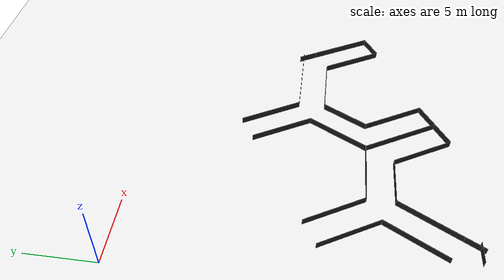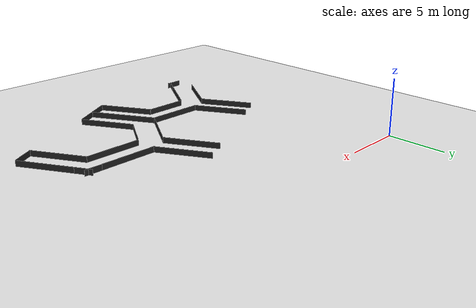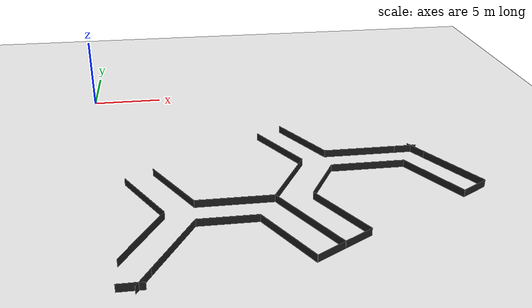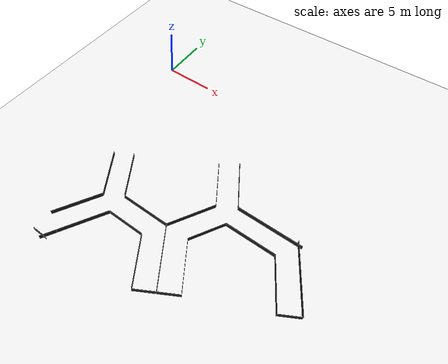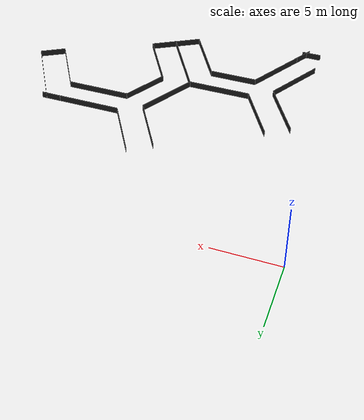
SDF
<sdf version="1.6">
 <world name="default">
  <model name="ground_plane">
   <static>1</static>
   <link name="link">
    <collision name="collision">
     <geometry><plane><normal>0 0 1</normal><size>100 100</size></plane></geometry>
     <surface><friction><ode><mu>100</mu><mu2>50</mu2></ode></friction></surface>
    </collision>
    <visual name="visual">
     <cast_shadows>0</cast_shadows>
     <geometry><plane><normal>0 0 1</normal><size>100 100</size></plane></geometry>
     <material>
      <script><uri>file://media/materials/scripts/gazebo.material</uri><name>Gazebo/White</name></script>
     </material>
    </visual>
   </link>
  </model>
  <model name="T_camber_2_2">
   <link name="link_clone">
    <inertial>
     <mass>1</mass>
     <inertia>
      <ixx>0.166667</ixx>
      <ixy>0</ixy>
      <ixz>0</ixz>
      <iyy>0.166667</iyy>
      <iyz>0</iyz>
      <izz>0.166667</izz>
     </inertia>
    </inertial>
    <pose>12.7749 3.79089 0 5e-06 -0 2.0944</pose>
    <visual name="visual_2">
     <geometry><box><size>0.015 4.8453 0.5</size></box></geometry>
     <material>
      <script><name>Gazebo/FlatBlack</name><uri>file://media/materials/scripts/gazebo.material</uri></script>
      <shader type="pixel"><normal_map>__default__</normal_map></shader>
      <ambient>0.1 0.1 0.1 1</ambient>
      <diffuse>0.1 0.1 0.1 1</diffuse>
      <specular>0.01 0.01 0.01 1</specular>
      <emissive>0 0 0 1</emissive>
     </material>
     <pose>2 0 0 0 -0 0</pose>
    </visual>
    <visual name="visual">
     <geometry><box><size>0.015 4.8453 0.5</size></box></geometry>
     <material>
      <script><name>Gazebo/FlatBlack</name><uri>file://media/materials/scripts/gazebo.material</uri></script>
      <shader type="pixel"><normal_map>__default__</normal_map></shader>
      <ambient>0.1 0.1 0.1 1</ambient>
      <diffuse>0.1 0.1 0.1 1</diffuse>
      <specular>0.01 0.01 0.01 1</specular>
      <emissive>0 0 0 1</emissive>
     </material>
    </visual>
    <collision name="collision_1">
     <pose>2 0 0 0 -0 0</pose>
     <geometry><box><size>0.015 4.8453 0.5</size></box></geometry>
     <surface>
      <friction>
       <ode><mu>1</mu><mu2>1</mu2><fdir1>0 0 0</fdir1><slip1>0</slip1><slip2>0</slip2></ode>
       <torsional>
        <coefficient>1</coefficient>
        <patch_radius>0</patch_radius>
        <surface_radius>0</surface_radius>
        <use_patch_radius>1</use_patch_radius>
        <ode><slip>0</slip></ode>
       </torsional>
      </friction>
      <bounce><restitution_coefficient>0</restitution_coefficient><threshold>1e+06</threshold></bounce>
      <contact>
       <collide_without_contact>0</collide_without_contact>
       <collide_without_contact_bitmask>1</collide_without_contact_bitmask>
       <collide_bitmask>1</collide_bitmask>
       <ode>
        <soft_cfm>0</soft_cfm>
        <soft_erp>0.2</soft_erp>
        <kp>1e+13</kp>
        <kd>1</kd>
        <max_vel>0.01</max_vel>
        <min_depth>0</min_depth>
       </ode>
       <bullet>
        <split_impulse>1</split_impulse>
        <split_impulse_penetration_threshold>-0.01</split_impulse_penetration_threshold>
        <soft_cfm>0</soft_cfm>
        <soft_erp>0.2</soft_erp>
        <kp>1e+13</kp>
        <kd>1</kd>
       </bullet>
      </contact>
     </surface>
    </collision>
    <collision name="collision">
     <geometry><box><size>0.015 4.8453 0.5</size></box></geometry>
     <surface>
      <friction>
       <ode><mu>1</mu><mu2>1</mu2><fdir1>0 0 0</fdir1><slip1>0</slip1><slip2>0</slip2></ode>
       <torsional>
        <coefficient>1</coefficient>
        <patch_radius>0</patch_radius>
        <surface_radius>0</surface_radius>
        <use_patch_radius>1</use_patch_radius>
        <ode><slip>0</slip></ode>
       </torsional>
      </friction>
      <bounce><restitution_coefficient>0</restitution_coefficient><threshold>1e+06</threshold></bounce>
      <contact>
       <collide_without_contact>0</collide_without_contact>
       <collide_without_contact_bitmask>1</collide_without_contact_bitmask>
       <collide_bitmask>1</collide_bitmask>
       <ode>
        <soft_cfm>0</soft_cfm>
        <soft_erp>0.2</soft_erp>
        <kp>1e+13</kp>
        <kd>1</kd>
        <max_vel>0.01</max_vel>
        <min_depth>0</min_depth>
       </ode>
       <bullet>
        <split_impulse>1</split_impulse>
        <split_impulse_penetration_threshold>-0.01</split_impulse_penetration_threshold>
        <soft_cfm>0</soft_cfm>
        <soft_erp>0.2</soft_erp>
        <kp>1e+13</kp>
        <kd>1</kd>
       </bullet>
      </contact>
     </surface>
    </collision>
   </link>
   <link name="link_clone_0_clone_clone_1">
    <inertial>
     <mass>1</mass>
     <inertia>
      <ixx>0.166667</ixx>
      <ixy>0</ixy>
      <ixz>0</ixz>
      <iyy>0.166667</iyy>
      <iyz>0</iyz>
      <izz>0.166667</izz>
     </inertia>
    </inertial>
    <pose>17.9599 5.5227 1e-06 5e-06 -0 -2.0944</pose>
    <visual name="visual">
     <geometry><box><size>0.015 3.7053 0.5</size></box></geometry>
     <material>
      <script><name>Gazebo/FlatBlack</name><uri>file://media/materials/scripts/gazebo.material</uri></script>
      <shader type="pixel"><normal_map>__default__</normal_map></shader>
      <ambient>0.1 0.1 0.1 1</ambient>
      <diffuse>0.1 0.1 0.1 1</diffuse>
      <specular>0.01 0.01 0.01 1</specular>
      <emissive>0 0 0 1</emissive>
     </material>
     <pose>0 -0.57 0 0 -0 0</pose>
    </visual>
    <visual name="visual_2">
     <geometry><box><size>0.015 4.8453 0.5</size></box></geometry>
     <material>
      <script><name>Gazebo/FlatBlack</name><uri>file://media/materials/scripts/gazebo.material</uri></script>
      <shader type="pixel"><normal_map>__default__</normal_map></shader>
      <ambient>0.1 0.1 0.1 1</ambient>
      <diffuse>0.1 0.1 0.1 1</diffuse>
      <specular>0.01 0.01 0.01 1</specular>
      <emissive>0 0 0 1</emissive>
     </material>
     <pose>2 0 0 0 -0 0</pose>
    </visual>
    <collision name="collision">
     <pose>0 -0.57 0 0 -0 0</pose>
     <geometry><box><size>0.015 3.7053 0.5</size></box></geometry>
     <surface>
      <friction>
       <ode><mu>1</mu><mu2>1</mu2><fdir1>0 0 0</fdir1><slip1>0</slip1><slip2>0</slip2></ode>
       <torsional>
        <coefficient>1</coefficient>
        <patch_radius>0</patch_radius>
        <surface_radius>0</surface_radius>
        <use_patch_radius>1</use_patch_radius>
        <ode><slip>0</slip></ode>
       </torsional>
      </friction>
      <bounce><restitution_coefficient>0</restitution_coefficient><threshold>1e+06</threshold></bounce>
      <contact>
       <collide_without_contact>0</collide_without_contact>
       <collide_without_contact_bitmask>1</collide_without_contact_bitmask>
       <collide_bitmask>1</collide_bitmask>
       <ode>
        <soft_cfm>0</soft_cfm>
        <soft_erp>0.2</soft_erp>
        <kp>1e+13</kp>
        <kd>1</kd>
        <max_vel>0.01</max_vel>
        <min_depth>0</min_depth>
       </ode>
       <bullet>
        <split_impulse>1</split_impulse>
        <split_impulse_penetration_threshold>-0.01</split_impulse_penetration_threshold>
        <soft_cfm>0</soft_cfm>
        <soft_erp>0.2</soft_erp>
        <kp>1e+13</kp>
        <kd>1</kd>
       </bullet>
      </contact>
     </surface>
    </collision>
    <collision name="collision_1">
     <pose>2 0 0 0 -0 0</pose>
     <geometry><box><size>0.015 4.8453 0.5</size></box></geometry>
     <surface>
      <friction>
       <ode><mu>1</mu><mu2>1</mu2><fdir1>0 0 0</fdir1><slip1>0</slip1><slip2>0</slip2></ode>
       <torsional>
        <coefficient>1</coefficient>
        <patch_radius>0</patch_radius>
        <surface_radius>0</surface_radius>
        <use_patch_radius>1</use_patch_radius>
        <ode><slip>0</slip></ode>
       </torsional>
      </friction>
      <bounce><restitution_coefficient>0</restitution_coefficient><threshold>1e+06</threshold></bounce>
      <contact>
       <collide_without_contact>0</collide_without_contact>
       <collide_without_contact_bitmask>1</collide_without_contact_bitmask>
       <collide_bitmask>1</collide_bitmask>
       <ode>
        <soft_cfm>0</soft_cfm>
        <soft_erp>0.2</soft_erp>
        <kp>1e+13</kp>
        <kd>1</kd>
        <max_vel>0.01</max_vel>
        <min_depth>0</min_depth>
       </ode>
       <bullet>
        <split_impulse>1</split_impulse>
        <split_impulse_penetration_threshold>-0.01</split_impulse_penetration_threshold>
        <soft_cfm>0</soft_cfm>
        <soft_erp>0.2</soft_erp>
        <kp>1e+13</kp>
        <kd>1</kd>
       </bullet>
      </contact>
     </surface>
    </collision>
   </link>
   <link name="link_clone_0_clone_clone_1_clone">
    <inertial>
     <mass>1</mass>
     <inertia>
      <ixx>0.166667</ixx>
      <ixy>0</ixy>
      <ixz>0</ixz>
      <iyy>0.166667</iyy>
      <iyz>0</iyz>
      <izz>0.166667</izz>
     </inertia>
    </inertial>
    <pose>19.0569 0.166866 -6e-06 5e-06 -0 0</pose>
    <visual name="visual">
     <geometry><box><size>0.015 4.8453 0.5</size></box></geometry>
     <material>
      <script><name>Gazebo/FlatBlack</name><uri>file://media/materials/scripts/gazebo.material</uri></script>
      <shader type="pixel"><normal_map>__default__</normal_map></shader>
      <ambient>0.1 0.1 0.1 1</ambient>
      <diffuse>0.1 0.1 0.1 1</diffuse>
      <specular>0.01 0.01 0.01 1</specular>
      <emissive>0 0 0 1</emissive>
     </material>
    </visual>
    <visual name="visual_2">
     <geometry><box><size>0.015 3.7053 0.5</size></box></geometry>
     <material>
      <script><name>Gazebo/FlatBlack</name><uri>file://media/materials/scripts/gazebo.material</uri></script>
      <shader type="pixel"><normal_map>__default__</normal_map></shader>
      <ambient>0.1 0.1 0.1 1</ambient>
      <diffuse>0.1 0.1 0.1 1</diffuse>
      <specular>0.01 0.01 0.01 1</specular>
      <emissive>0 0 0 1</emissive>
     </material>
     <pose>2 -0.57 0 0 -0 0</pose>
    </visual>
    <collision name="collision">
     <geometry><box><size>0.015 4.8453 0.5</size></box></geometry>
     <surface>
      <friction>
       <ode><mu>1</mu><mu2>1</mu2><fdir1>0 0 0</fdir1><slip1>0</slip1><slip2>0</slip2></ode>
       <torsional>
        <coefficient>1</coefficient>
        <patch_radius>0</patch_radius>
        <surface_radius>0</surface_radius>
        <use_patch_radius>1</use_patch_radius>
        <ode><slip>0</slip></ode>
       </torsional>
      </friction>
      <bounce><restitution_coefficient>0</restitution_coefficient><threshold>1e+06</threshold></bounce>
      <contact>
       <collide_without_contact>0</collide_without_contact>
       <collide_without_contact_bitmask>1</collide_without_contact_bitmask>
       <collide_bitmask>1</collide_bitmask>
       <ode>
        <soft_cfm>0</soft_cfm>
        <soft_erp>0.2</soft_erp>
        <kp>1e+13</kp>
        <kd>1</kd>
        <max_vel>0.01</max_vel>
        <min_depth>0</min_depth>
       </ode>
       <bullet>
        <split_impulse>1</split_impulse>
        <split_impulse_penetration_threshold>-0.01</split_impulse_penetration_threshold>
        <soft_cfm>0</soft_cfm>
        <soft_erp>0.2</soft_erp>
        <kp>1e+13</kp>
        <kd>1</kd>
       </bullet>
      </contact>
     </surface>
    </collision>
    <collision name="collision_1">
     <pose>2 -0.57 0 0 -0 0</pose>
     <geometry><box><size>0.015 3.7053 0.5</size></box></geometry>
     <surface>
      <friction>
       <ode><mu>1</mu><mu2>1</mu2><fdir1>0 0 0</fdir1><slip1>0</slip1><slip2>0</slip2></ode>
       <torsional>
        <coefficient>1</coefficient>
        <patch_radius>0</patch_radius>
        <surface_radius>0</surface_radius>
        <use_patch_radius>1</use_patch_radius>
        <ode><slip>0</slip></ode>
       </torsional>
      </friction>
      <bounce><restitution_coefficient>0</restitution_coefficient><threshold>1e+06</threshold></bounce>
      <contact>
       <collide_without_contact>0</collide_without_contact>
       <collide_without_contact_bitmask>1</collide_without_contact_bitmask>
       <collide_bitmask>1</collide_bitmask>
       <ode>
        <soft_cfm>0</soft_cfm>
        <soft_erp>0.2</soft_erp>
        <kp>1e+13</kp>
        <kd>1</kd>
        <max_vel>0.01</max_vel>
        <min_depth>0</min_depth>
       </ode>
       <bullet>
        <split_impulse>1</split_impulse>
        <split_impulse_penetration_threshold>-0.01</split_impulse_penetration_threshold>
        <soft_cfm>0</soft_cfm>
        <soft_erp>0.2</soft_erp>
        <kp>1e+13</kp>
        <kd>1</kd>
       </bullet>
      </contact>
     </surface>
    </collision>
   </link>
   <link name="link_clone_0_clone_clone_clone">
    <inertial>
     <mass>1</mass>
     <inertia>
      <ixx>0.166667</ixx>
      <ixy>0</ixy>
      <ixz>0</ixz>
      <iyy>0.166667</iyy>
      <iyz>0</iyz>
      <izz>0.166667</izz>
     </inertia>
    </inertial>
    <pose>23.1519 -3.46238 0 5e-06 -0 -2.0944</pose>
    <visual name="visual">
     <geometry><box><size>0.015 4.8453 0.5</size></box></geometry>
     <material>
      <script><name>Gazebo/FlatBlack</name><uri>file://media/materials/scripts/gazebo.material</uri></script>
      <shader type="pixel"><normal_map>__default__</normal_map></shader>
      <ambient>0.1 0.1 0.1 1</ambient>
      <diffuse>0.1 0.1 0.1 1</diffuse>
      <specular>0.01 0.01 0.01 1</specular>
      <emissive>0 0 0 1</emissive>
     </material>
    </visual>
    <visual name="visual_2">
     <geometry><box><size>0.015 4.8453 0.5</size></box></geometry>
     <material>
      <script><name>Gazebo/FlatBlack</name><uri>file://media/materials/scripts/gazebo.material</uri></script>
      <shader type="pixel"><normal_map>__default__</normal_map></shader>
      <ambient>0.1 0.1 0.1 1</ambient>
      <diffuse>0.1 0.1 0.1 1</diffuse>
      <specular>0.01 0.01 0.01 1</specular>
      <emissive>0 0 0 1</emissive>
     </material>
     <pose>2 0 0 0 -0 0</pose>
    </visual>
    <collision name="collision">
     <geometry><box><size>0.015 4.8453 0.5</size></box></geometry>
     <surface>
      <friction>
       <ode><mu>1</mu><mu2>1</mu2><fdir1>0 0 0</fdir1><slip1>0</slip1><slip2>0</slip2></ode>
       <torsional>
        <coefficient>1</coefficient>
        <patch_radius>0</patch_radius>
        <surface_radius>0</surface_radius>
        <use_patch_radius>1</use_patch_radius>
        <ode><slip>0</slip></ode>
       </torsional>
      </friction>
      <bounce><restitution_coefficient>0</restitution_coefficient><threshold>1e+06</threshold></bounce>
      <contact>
       <collide_without_contact>0</collide_without_contact>
       <collide_without_contact_bitmask>1</collide_without_contact_bitmask>
       <collide_bitmask>1</collide_bitmask>
       <ode>
        <soft_cfm>0</soft_cfm>
        <soft_erp>0.2</soft_erp>
        <kp>1e+13</kp>
        <kd>1</kd>
        <max_vel>0.01</max_vel>
        <min_depth>0</min_depth>
       </ode>
       <bullet>
        <split_impulse>1</split_impulse>
        <split_impulse_penetration_threshold>-0.01</split_impulse_penetration_threshold>
        <soft_cfm>0</soft_cfm>
        <soft_erp>0.2</soft_erp>
        <kp>1e+13</kp>
        <kd>1</kd>
       </bullet>
      </contact>
     </surface>
    </collision>
    <collision name="collision_1">
     <pose>2 0 0 0 -0 0</pose>
     <geometry><box><size>0.015 4.8453 0.5</size></box></geometry>
     <surface>
      <friction>
       <ode><mu>1</mu><mu2>1</mu2><fdir1>0 0 0</fdir1><slip1>0</slip1><slip2>0</slip2></ode>
       <torsional>
        <coefficient>1</coefficient>
        <patch_radius>0</patch_radius>
        <surface_radius>0</surface_radius>
        <use_patch_radius>1</use_patch_radius>
        <ode><slip>0</slip></ode>
       </torsional>
      </friction>
      <bounce><restitution_coefficient>0</restitution_coefficient><threshold>1e+06</threshold></bounce>
      <contact>
       <collide_without_contact>0</collide_without_contact>
       <collide_without_contact_bitmask>1</collide_without_contact_bitmask>
       <collide_bitmask>1</collide_bitmask>
       <ode>
        <soft_cfm>0</soft_cfm>
        <soft_erp>0.2</soft_erp>
        <kp>1e+13</kp>
        <kd>1</kd>
        <max_vel>0.01</max_vel>
        <min_depth>0</min_depth>
       </ode>
       <bullet>
        <split_impulse>1</split_impulse>
        <split_impulse_penetration_threshold>-0.01</split_impulse_penetration_threshold>
        <soft_cfm>0</soft_cfm>
        <soft_erp>0.2</soft_erp>
        <kp>1e+13</kp>
        <kd>1</kd>
       </bullet>
      </contact>
     </surface>
    </collision>
   </link>
   <link name="link_clone_1">
    <inertial>
     <mass>1</mass>
     <inertia>
      <ixx>0.166667</ixx>
      <ixy>0</ixy>
      <ixz>0</ixz>
      <iyy>0.166667</iyy>
      <iyz>0</iyz>
      <izz>0.166667</izz>
     </inertia>
    </inertial>
    <pose>13.8686 9.15 0 0 -0 0</pose>
    <visual name="visual_2">
     <geometry><box><size>0.015 4.8453 0.5</size></box></geometry>
     <material>
      <script><name>Gazebo/FlatBlack</name><uri>file://media/materials/scripts/gazebo.material</uri></script>
      <shader type="pixel"><normal_map>__default__</normal_map></shader>
      <ambient>0.1 0.1 0.1 1</ambient>
      <diffuse>0.1 0.1 0.1 1</diffuse>
      <specular>0.01 0.01 0.01 1</specular>
      <emissive>0 0 0 1</emissive>
     </material>
     <pose>2 0 0 0 -0 0</pose>
    </visual>
    <visual name="visual">
     <geometry><box><size>0.015 4.8453 0.5</size></box></geometry>
     <material>
      <script><name>Gazebo/FlatBlack</name><uri>file://media/materials/scripts/gazebo.material</uri></script>
      <shader type="pixel"><normal_map>__default__</normal_map></shader>
      <ambient>0.1 0.1 0.1 1</ambient>
      <diffuse>0.1 0.1 0.1 1</diffuse>
      <specular>0.01 0.01 0.01 1</specular>
      <emissive>0 0 0 1</emissive>
     </material>
    </visual>
    <collision name="collision_1">
     <pose>2 0 0 0 -0 0</pose>
     <geometry><box><size>0.015 4.8453 0.5</size></box></geometry>
     <surface>
      <friction>
       <ode><mu>1</mu><mu2>1</mu2><fdir1>0 0 0</fdir1><slip1>0</slip1><slip2>0</slip2></ode>
       <torsional>
        <coefficient>1</coefficient>
        <patch_radius>0</patch_radius>
        <surface_radius>0</surface_radius>
        <use_patch_radius>1</use_patch_radius>
        <ode><slip>0</slip></ode>
       </torsional>
      </friction>
      <bounce><restitution_coefficient>0</restitution_coefficient><threshold>1e+06</threshold></bounce>
      <contact>
       <collide_without_contact>0</collide_without_contact>
       <collide_without_contact_bitmask>1</collide_without_contact_bitmask>
       <collide_bitmask>1</collide_bitmask>
       <ode>
        <soft_cfm>0</soft_cfm>
        <soft_erp>0.2</soft_erp>
        <kp>1e+13</kp>
        <kd>1</kd>
        <max_vel>0.01</max_vel>
        <min_depth>0</min_depth>
       </ode>
       <bullet>
        <split_impulse>1</split_impulse>
        <split_impulse_penetration_threshold>-0.01</split_impulse_penetration_threshold>
        <soft_cfm>0</soft_cfm>
        <soft_erp>0.2</soft_erp>
        <kp>1e+13</kp>
        <kd>1</kd>
       </bullet>
      </contact>
     </surface>
    </collision>
    <collision name="collision">
     <geometry><box><size>0.015 4.8453 0.5</size></box></geometry>
     <surface>
      <friction>
       <ode><mu>1</mu><mu2>1</mu2><fdir1>0 0 0</fdir1><slip1>0</slip1><slip2>0</slip2></ode>
       <torsional>
        <coefficient>1</coefficient>
        <patch_radius>0</patch_radius>
        <surface_radius>0</surface_radius>
        <use_patch_radius>1</use_patch_radius>
        <ode><slip>0</slip></ode>
       </torsional>
      </friction>
      <bounce><restitution_coefficient>0</restitution_coefficient><threshold>1e+06</threshold></bounce>
      <contact>
       <collide_without_contact>0</collide_without_contact>
       <collide_without_contact_bitmask>1</collide_without_contact_bitmask>
       <collide_bitmask>1</collide_bitmask>
       <ode>
        <soft_cfm>0</soft_cfm>
        <soft_erp>0.2</soft_erp>
        <kp>1e+13</kp>
        <kd>1</kd>
        <max_vel>0.01</max_vel>
        <min_depth>0</min_depth>
       </ode>
       <bullet>
        <split_impulse>1</split_impulse>
        <split_impulse_penetration_threshold>-0.01</split_impulse_penetration_threshold>
        <soft_cfm>0</soft_cfm>
        <soft_erp>0.2</soft_erp>
        <kp>1e+13</kp>
        <kd>1</kd>
       </bullet>
      </contact>
     </surface>
    </collision>
   </link>
   <link name="link_clone_clone_1">
    <inertial>
     <mass>1</mass>
     <inertia>
      <ixx>0.166667</ixx>
      <ixy>0</ixy>
      <ixz>0</ixz>
      <iyy>0.166667</iyy>
      <iyz>0</iyz>
      <izz>0.166667</izz>
     </inertia>
    </inertial>
    <pose>17.9632 -5.19404 0 5e-06 -0 2.0944</pose>
    <visual name="visual_2">
     <geometry><box><size>0.015 4.8453 0.5</size></box></geometry>
     <material>
      <script><name>Gazebo/FlatBlack</name><uri>file://media/materials/scripts/gazebo.material</uri></script>
      <shader type="pixel"><normal_map>__default__</normal_map></shader>
      <ambient>0.1 0.1 0.1 1</ambient>
      <diffuse>0.1 0.1 0.1 1</diffuse>
      <specular>0.01 0.01 0.01 1</specular>
      <emissive>0 0 0 1</emissive>
     </material>
     <pose>2 0 0 0 -0 0</pose>
    </visual>
    <visual name="visual">
     <geometry><box><size>0.015 4.8453 0.5</size></box></geometry>
     <material>
      <script><name>Gazebo/FlatBlack</name><uri>file://media/materials/scripts/gazebo.material</uri></script>
      <shader type="pixel"><normal_map>__default__</normal_map></shader>
      <ambient>0.1 0.1 0.1 1</ambient>
      <diffuse>0.1 0.1 0.1 1</diffuse>
      <specular>0.01 0.01 0.01 1</specular>
      <emissive>0 0 0 1</emissive>
     </material>
    </visual>
    <collision name="collision_1">
     <pose>2 0 0 0 -0 0</pose>
     <geometry><box><size>0.015 4.8453 0.5</size></box></geometry>
     <surface>
      <friction>
       <ode><mu>1</mu><mu2>1</mu2><fdir1>0 0 0</fdir1><slip1>0</slip1><slip2>0</slip2></ode>
       <torsional>
        <coefficient>1</coefficient>
        <patch_radius>0</patch_radius>
        <surface_radius>0</surface_radius>
        <use_patch_radius>1</use_patch_radius>
        <ode><slip>0</slip></ode>
       </torsional>
      </friction>
      <bounce><restitution_coefficient>0</restitution_coefficient><threshold>1e+06</threshold></bounce>
      <contact>
       <collide_without_contact>0</collide_without_contact>
       <collide_without_contact_bitmask>1</collide_without_contact_bitmask>
       <collide_bitmask>1</collide_bitmask>
       <ode>
        <soft_cfm>0</soft_cfm>
        <soft_erp>0.2</soft_erp>
        <kp>1e+13</kp>
        <kd>1</kd>
        <max_vel>0.01</max_vel>
        <min_depth>0</min_depth>
       </ode>
       <bullet>
        <split_impulse>1</split_impulse>
        <split_impulse_penetration_threshold>-0.01</split_impulse_penetration_threshold>
        <soft_cfm>0</soft_cfm>
        <soft_erp>0.2</soft_erp>
        <kp>1e+13</kp>
        <kd>1</kd>
       </bullet>
      </contact>
     </surface>
    </collision>
    <collision name="collision">
     <geometry><box><size>0.015 4.8453 0.5</size></box></geometry>
     <surface>
      <friction>
       <ode><mu>1</mu><mu2>1</mu2><fdir1>0 0 0</fdir1><slip1>0</slip1><slip2>0</slip2></ode>
       <torsional>
        <coefficient>1</coefficient>
        <patch_radius>0</patch_radius>
        <surface_radius>0</surface_radius>
        <use_patch_radius>1</use_patch_radius>
        <ode><slip>0</slip></ode>
       </torsional>
      </friction>
      <bounce><restitution_coefficient>0</restitution_coefficient><threshold>1e+06</threshold></bounce>
      <contact>
       <collide_without_contact>0</collide_without_contact>
       <collide_without_contact_bitmask>1</collide_without_contact_bitmask>
       <collide_bitmask>1</collide_bitmask>
       <ode>
        <soft_cfm>0</soft_cfm>
        <soft_erp>0.2</soft_erp>
        <kp>1e+13</kp>
        <kd>1</kd>
        <max_vel>0.01</max_vel>
        <min_depth>0</min_depth>
       </ode>
       <bullet>
        <split_impulse>1</split_impulse>
        <split_impulse_penetration_threshold>-0.01</split_impulse_penetration_threshold>
        <soft_cfm>0</soft_cfm>
        <soft_erp>0.2</soft_erp>
        <kp>1e+13</kp>
        <kd>1</kd>
       </bullet>
      </contact>
     </surface>
    </collision>
   </link>
   <link name="link_clone_clone_1_clone">
    <inertial>
     <mass>1</mass>
     <inertia>
      <ixx>0.166667</ixx>
      <ixy>0</ixy>
      <ixz>0</ixz>
      <iyy>0.166667</iyy>
      <iyz>0</iyz>
      <izz>0.166667</izz>
     </inertia>
    </inertial>
    <pose>17.9632 12.7767 0 5e-06 -0 2.0944</pose>
    <visual name="visual_2">
     <geometry><box><size>0.015 4.8453 0.5</size></box></geometry>
     <material>
      <script><name>Gazebo/FlatBlack</name><uri>file://media/materials/scripts/gazebo.material</uri></script>
      <shader type="pixel"><normal_map>__default__</normal_map></shader>
      <ambient>0.1 0.1 0.1 1</ambient>
      <diffuse>0.1 0.1 0.1 1</diffuse>
      <specular>0.01 0.01 0.01 1</specular>
      <emissive>0 0 0 1</emissive>
     </material>
     <pose>2 0 0 0 -0 0</pose>
    </visual>
    <visual name="visual">
     <geometry><box><size>0.015 4.8453 0.5</size></box></geometry>
     <material>
      <script><name>Gazebo/FlatBlack</name><uri>file://media/materials/scripts/gazebo.material</uri></script>
      <shader type="pixel"><normal_map>__default__</normal_map></shader>
      <ambient>0.1 0.1 0.1 1</ambient>
      <diffuse>0.1 0.1 0.1 1</diffuse>
      <specular>0.01 0.01 0.01 1</specular>
      <emissive>0 0 0 1</emissive>
     </material>
    </visual>
    <collision name="collision_1">
     <pose>2 0 0 0 -0 0</pose>
     <geometry><box><size>0.015 4.8453 0.5</size></box></geometry>
     <surface>
      <friction>
       <ode><mu>1</mu><mu2>1</mu2><fdir1>0 0 0</fdir1><slip1>0</slip1><slip2>0</slip2></ode>
       <torsional>
        <coefficient>1</coefficient>
        <patch_radius>0</patch_radius>
        <surface_radius>0</surface_radius>
        <use_patch_radius>1</use_patch_radius>
        <ode><slip>0</slip></ode>
       </torsional>
      </friction>
      <bounce><restitution_coefficient>0</restitution_coefficient><threshold>1e+06</threshold></bounce>
      <contact>
       <collide_without_contact>0</collide_without_contact>
       <collide_without_contact_bitmask>1</collide_without_contact_bitmask>
       <collide_bitmask>1</collide_bitmask>
       <ode>
        <soft_cfm>0</soft_cfm>
        <soft_erp>0.2</soft_erp>
        <kp>1e+13</kp>
        <kd>1</kd>
        <max_vel>0.01</max_vel>
        <min_depth>0</min_depth>
       </ode>
       <bullet>
        <split_impulse>1</split_impulse>
        <split_impulse_penetration_threshold>-0.01</split_impulse_penetration_threshold>
        <soft_cfm>0</soft_cfm>
        <soft_erp>0.2</soft_erp>
        <kp>1e+13</kp>
        <kd>1</kd>
       </bullet>
      </contact>
     </surface>
    </collision>
    <collision name="collision">
     <geometry><box><size>0.015 4.8453 0.5</size></box></geometry>
     <surface>
      <friction>
       <ode><mu>1</mu><mu2>1</mu2><fdir1>0 0 0</fdir1><slip1>0</slip1><slip2>0</slip2></ode>
       <torsional>
        <coefficient>1</coefficient>
        <patch_radius>0</patch_radius>
        <surface_radius>0</surface_radius>
        <use_patch_radius>1</use_patch_radius>
        <ode><slip>0</slip></ode>
       </torsional>
      </friction>
      <bounce><restitution_coefficient>0</restitution_coefficient><threshold>1e+06</threshold></bounce>
      <contact>
       <collide_without_contact>0</collide_without_contact>
       <collide_without_contact_bitmask>1</collide_without_contact_bitmask>
       <collide_bitmask>1</collide_bitmask>
       <ode>
        <soft_cfm>0</soft_cfm>
        <soft_erp>0.2</soft_erp>
        <kp>1e+13</kp>
        <kd>1</kd>
        <max_vel>0.01</max_vel>
        <min_depth>0</min_depth>
       </ode>
       <bullet>
        <split_impulse>1</split_impulse>
        <split_impulse_penetration_threshold>-0.01</split_impulse_penetration_threshold>
        <soft_cfm>0</soft_cfm>
        <soft_erp>0.2</soft_erp>
        <kp>1e+13</kp>
        <kd>1</kd>
       </bullet>
      </contact>
     </surface>
    </collision>
   </link>
   <link name="link_clone_clone_1_clone_clone_0">
    <inertial>
     <mass>1</mass>
     <inertia>
      <ixx>0.166667</ixx>
      <ixy>0</ixy>
      <ixz>0</ixz>
      <iyy>0.166667</iyy>
      <iyz>0</iyz>
      <izz>0.166667</izz>
     </inertia>
    </inertial>
    <pose>22.1519 4.37214 0 5e-06 -0 2.0944</pose>
    <visual name="visual">
     <geometry><box><size>0.015 6 0.5</size></box></geometry>
     <material>
      <script><name>Gazebo/FlatBlack</name><uri>file://media/materials/scripts/gazebo.material</uri></script>
      <shader type="pixel"><normal_map>__default__</normal_map></shader>
      <ambient>0.1 0.1 0.1 1</ambient>
      <diffuse>0.1 0.1 0.1 1</diffuse>
      <specular>0.01 0.01 0.01 1</specular>
      <emissive>0 0 0 1</emissive>
     </material>
     <pose>0 0.58 0 0 -0 0</pose>
    </visual>
    <visual name="visual_2">
     <geometry><box><size>0.015 4.8453 0.5</size></box></geometry>
     <material>
      <script><name>Gazebo/FlatBlack</name><uri>file://media/materials/scripts/gazebo.material</uri></script>
      <shader type="pixel"><normal_map>__default__</normal_map></shader>
      <ambient>0.1 0.1 0.1 1</ambient>
      <diffuse>0.1 0.1 0.1 1</diffuse>
      <specular>0.01 0.01 0.01 1</specular>
      <emissive>0 0 0 1</emissive>
     </material>
     <pose>2 0 0 0 -0 0</pose>
    </visual>
    <collision name="collision">
     <pose>0 0.58 0 0 -0 0</pose>
     <geometry><box><size>0.015 6 0.5</size></box></geometry>
     <surface>
      <friction>
       <ode><mu>1</mu><mu2>1</mu2><fdir1>0 0 0</fdir1><slip1>0</slip1><slip2>0</slip2></ode>
       <torsional>
        <coefficient>1</coefficient>
        <patch_radius>0</patch_radius>
        <surface_radius>0</surface_radius>
        <use_patch_radius>1</use_patch_radius>
        <ode><slip>0</slip></ode>
       </torsional>
      </friction>
      <bounce><restitution_coefficient>0</restitution_coefficient><threshold>1e+06</threshold></bounce>
      <contact>
       <collide_without_contact>0</collide_without_contact>
       <collide_without_contact_bitmask>1</collide_without_contact_bitmask>
       <collide_bitmask>1</collide_bitmask>
       <ode>
        <soft_cfm>0</soft_cfm>
        <soft_erp>0.2</soft_erp>
        <kp>1e+13</kp>
        <kd>1</kd>
        <max_vel>0.01</max_vel>
        <min_depth>0</min_depth>
       </ode>
       <bullet>
        <split_impulse>1</split_impulse>
        <split_impulse_penetration_threshold>-0.01</split_impulse_penetration_threshold>
        <soft_cfm>0</soft_cfm>
        <soft_erp>0.2</soft_erp>
        <kp>1e+13</kp>
        <kd>1</kd>
       </bullet>
      </contact>
     </surface>
    </collision>
    <collision name="collision_1">
     <pose>2 0 0 0 -0 0</pose>
     <geometry><box><size>0.015 4.8453 0.5</size></box></geometry>
     <surface>
      <friction>
       <ode><mu>1</mu><mu2>1</mu2><fdir1>0 0 0</fdir1><slip1>0</slip1><slip2>0</slip2></ode>
       <torsional>
        <coefficient>1</coefficient>
        <patch_radius>0</patch_radius>
        <surface_radius>0</surface_radius>
        <use_patch_radius>1</use_patch_radius>
        <ode><slip>0</slip></ode>
       </torsional>
      </friction>
      <bounce><restitution_coefficient>0</restitution_coefficient><threshold>1e+06</threshold></bounce>
      <contact>
       <collide_without_contact>0</collide_without_contact>
       <collide_without_contact_bitmask>1</collide_without_contact_bitmask>
       <collide_bitmask>1</collide_bitmask>
       <ode>
        <soft_cfm>0</soft_cfm>
        <soft_erp>0.2</soft_erp>
        <kp>1e+13</kp>
        <kd>1</kd>
        <max_vel>0.01</max_vel>
        <min_depth>0</min_depth>
       </ode>
       <bullet>
        <split_impulse>1</split_impulse>
        <split_impulse_penetration_threshold>-0.01</split_impulse_penetration_threshold>
        <soft_cfm>0</soft_cfm>
        <soft_erp>0.2</soft_erp>
        <kp>1e+13</kp>
        <kd>1</kd>
       </bullet>
      </contact>
     </surface>
    </collision>
   </link>
   <link name="link_clone_clone_1_clone_clone_1">
    <inertial>
     <mass>1</mass>
     <inertia>
      <ixx>0.166667</ixx>
      <ixy>0</ixy>
      <ixz>0</ixz>
      <iyy>0.166667</iyy>
      <iyz>0</iyz>
      <izz>0.166667</izz>
     </inertia>
    </inertial>
    <pose>23.1539 2.6413 0 5e-06 -0 2.0944</pose>
    <visual name="visual">
     <geometry><box><size>0.015 4.8453 0.5</size></box></geometry>
     <material>
      <script><name>Gazebo/FlatBlack</name><uri>file://media/materials/scripts/gazebo.material</uri></script>
      <shader type="pixel"><normal_map>__default__</normal_map></shader>
      <ambient>0.1 0.1 0.1 1</ambient>
      <diffuse>0.1 0.1 0.1 1</diffuse>
      <specular>0.01 0.01 0.01 1</specular>
      <emissive>0 0 0 1</emissive>
     </material>
    </visual>
    <visual name="visual_2">
     <geometry><box><size>0.015 6 0.5</size></box></geometry>
     <material>
      <script><name>Gazebo/FlatBlack</name><uri>file://media/materials/scripts/gazebo.material</uri></script>
      <shader type="pixel"><normal_map>__default__</normal_map></shader>
      <ambient>0.1 0.1 0.1 1</ambient>
      <diffuse>0.1 0.1 0.1 1</diffuse>
      <specular>0.01 0.01 0.01 1</specular>
      <emissive>0 0 0 1</emissive>
     </material>
     <pose>2 0.58 0 0 -0 0</pose>
    </visual>
    <collision name="collision_1">
     <pose>2 0.58 0 0 -0 0</pose>
     <geometry><box><size>0.015 6 0.5</size></box></geometry>
     <surface>
      <friction>
       <ode><mu>1</mu><mu2>1</mu2><fdir1>0 0 0</fdir1><slip1>0</slip1><slip2>0</slip2></ode>
       <torsional>
        <coefficient>1</coefficient>
        <patch_radius>0</patch_radius>
        <surface_radius>0</surface_radius>
        <use_patch_radius>1</use_patch_radius>
        <ode><slip>0</slip></ode>
       </torsional>
      </friction>
      <bounce><restitution_coefficient>0</restitution_coefficient><threshold>1e+06</threshold></bounce>
      <contact>
       <collide_without_contact>0</collide_without_contact>
       <collide_without_contact_bitmask>1</collide_without_contact_bitmask>
       <collide_bitmask>1</collide_bitmask>
       <ode>
        <soft_cfm>0</soft_cfm>
        <soft_erp>0.2</soft_erp>
        <kp>1e+13</kp>
        <kd>1</kd>
        <max_vel>0.01</max_vel>
        <min_depth>0</min_depth>
       </ode>
       <bullet>
        <split_impulse>1</split_impulse>
        <split_impulse_penetration_threshold>-0.01</split_impulse_penetration_threshold>
        <soft_cfm>0</soft_cfm>
        <soft_erp>0.2</soft_erp>
        <kp>1e+13</kp>
        <kd>1</kd>
       </bullet>
      </contact>
     </surface>
    </collision>
    <collision name="collision">
     <geometry><box><size>0.015 4.8453 0.5</size></box></geometry>
     <surface>
      <friction>
       <ode><mu>1</mu><mu2>1</mu2><fdir1>0 0 0</fdir1><slip1>0</slip1><slip2>0</slip2></ode>
       <torsional>
        <coefficient>1</coefficient>
        <patch_radius>0</patch_radius>
        <surface_radius>0</surface_radius>
        <use_patch_radius>1</use_patch_radius>
        <ode><slip>0</slip></ode>
       </torsional>
      </friction>
      <bounce><restitution_coefficient>0</restitution_coefficient><threshold>1e+06</threshold></bounce>
      <contact>
       <collide_without_contact>0</collide_without_contact>
       <collide_without_contact_bitmask>1</collide_without_contact_bitmask>
       <collide_bitmask>1</collide_bitmask>
       <ode>
        <soft_cfm>0</soft_cfm>
        <soft_erp>0.2</soft_erp>
        <kp>1e+13</kp>
        <kd>1</kd>
        <max_vel>0.01</max_vel>
        <min_depth>0</min_depth>
       </ode>
       <bullet>
        <split_impulse>1</split_impulse>
        <split_impulse_penetration_threshold>-0.01</split_impulse_penetration_threshold>
        <soft_cfm>0</soft_cfm>
        <soft_erp>0.2</soft_erp>
        <kp>1e+13</kp>
        <kd>1</kd>
       </bullet>
      </contact>
     </surface>
    </collision>
   </link>
   <link name="link_clone_clone_clone_clone_0_clone_0">
    <inertial>
     <mass>1</mass>
     <inertia>
      <ixx>0.166667</ixx>
      <ixy>0</ixy>
      <ixz>0</ixz>
      <iyy>0.166667</iyy>
      <iyz>0</iyz>
      <izz>0.166667</izz>
     </inertia>
    </inertial>
    <pose>13.8673 12.3104 -9e-06 5e-06 -0 0</pose>
    <visual name="visual">
     <geometry><box><size>0.015 1.5 0.5</size></box></geometry>
     <material>
      <script><name>Gazebo/FlatBlack</name><uri>file://media/materials/scripts/gazebo.material</uri></script>
      <shader type="pixel"><normal_map>__default__</normal_map></shader>
      <ambient>0.1 0.1 0.1 1</ambient>
      <diffuse>0.1 0.1 0.1 1</diffuse>
      <specular>0.01 0.01 0.01 1</specular>
      <emissive>0 0 0 1</emissive>
     </material>
    </visual>
    <visual name="visual_2">
     <geometry><box><size>0.015 1.5 0.5</size></box></geometry>
     <material>
      <script><name>Gazebo/FlatBlack</name><uri>file://media/materials/scripts/gazebo.material</uri></script>
      <shader type="pixel"><normal_map>__default__</normal_map></shader>
      <ambient>0.1 0.1 0.1 1</ambient>
      <diffuse>0.1 0.1 0.1 1</diffuse>
      <specular>0.01 0.01 0.01 1</specular>
      <emissive>0 0 0 1</emissive>
     </material>
     <pose>0.3525 0.615 0 0 -0 2.0944</pose>
    </visual>
    <collision name="collision">
     <geometry><box><size>0.015 1.5 0.5</size></box></geometry>
     <surface>
      <friction>
       <ode><mu>1</mu><mu2>1</mu2><fdir1>0 0 0</fdir1><slip1>0</slip1><slip2>0</slip2></ode>
       <torsional>
        <coefficient>1</coefficient>
        <patch_radius>0</patch_radius>
        <surface_radius>0</surface_radius>
        <use_patch_radius>1</use_patch_radius>
        <ode><slip>0</slip></ode>
       </torsional>
      </friction>
      <bounce><restitution_coefficient>0</restitution_coefficient><threshold>1e+06</threshold></bounce>
      <contact>
       <collide_without_contact>0</collide_without_contact>
       <collide_without_contact_bitmask>1</collide_without_contact_bitmask>
       <collide_bitmask>1</collide_bitmask>
       <ode>
        <soft_cfm>0</soft_cfm>
        <soft_erp>0.2</soft_erp>
        <kp>1e+13</kp>
        <kd>1</kd>
        <max_vel>0.01</max_vel>
        <min_depth>0</min_depth>
       </ode>
       <bullet>
        <split_impulse>1</split_impulse>
        <split_impulse_penetration_threshold>-0.01</split_impulse_penetration_threshold>
        <soft_cfm>0</soft_cfm>
        <soft_erp>0.2</soft_erp>
        <kp>1e+13</kp>
        <kd>1</kd>
       </bullet>
      </contact>
     </surface>
    </collision>
    <collision name="collision_2">
     <pose>0.3525 0.615 0 0 -0 2.0944</pose>
     <geometry><box><size>0.015 1.5 0.5</size></box></geometry>
     <surface>
      <friction>
       <ode><mu>1</mu><mu2>1</mu2><fdir1>0 0 0</fdir1><slip1>0</slip1><slip2>0</slip2></ode>
       <torsional>
        <coefficient>1</coefficient>
        <patch_radius>0</patch_radius>
        <surface_radius>0</surface_radius>
        <use_patch_radius>1</use_patch_radius>
        <ode><slip>0</slip></ode>
       </torsional>
      </friction>
      <bounce><restitution_coefficient>0</restitution_coefficient><threshold>1e+06</threshold></bounce>
      <contact>
       <collide_without_contact>0</collide_without_contact>
       <collide_without_contact_bitmask>1</collide_without_contact_bitmask>
       <collide_bitmask>1</collide_bitmask>
       <ode>
        <soft_cfm>0</soft_cfm>
        <soft_erp>0.2</soft_erp>
        <kp>1e+13</kp>
        <kd>1</kd>
        <max_vel>0.01</max_vel>
        <min_depth>0</min_depth>
       </ode>
       <bullet>
        <split_impulse>1</split_impulse>
        <split_impulse_penetration_threshold>-0.01</split_impulse_penetration_threshold>
        <soft_cfm>0</soft_cfm>
        <soft_erp>0.2</soft_erp>
        <kp>1e+13</kp>
        <kd>1</kd>
       </bullet>
      </contact>
     </surface>
    </collision>
   </link>
   <link name="link_clone_clone_clone_clone_0_clone_clone">
    <inertial>
     <mass>1</mass>
     <inertia>
      <ixx>0.166667</ixx>
      <ixy>0</ixy>
      <ixz>0</ixz>
      <iyy>0.166667</iyy>
      <iyz>0</iyz>
      <izz>0.166667</izz>
     </inertia>
    </inertial>
    <pose>25.8891 -5.04165 -9e-06 5e-06 -0 -2.0944</pose>
    <visual name="visual">
     <geometry><box><size>0.015 1.5 0.5</size></box></geometry>
     <material>
      <script><name>Gazebo/FlatBlack</name><uri>file://media/materials/scripts/gazebo.material</uri></script>
      <shader type="pixel"><normal_map>__default__</normal_map></shader>
      <ambient>0.1 0.1 0.1 1</ambient>
      <diffuse>0.1 0.1 0.1 1</diffuse>
      <specular>0.01 0.01 0.01 1</specular>
      <emissive>0 0 0 1</emissive>
     </material>
    </visual>
    <visual name="visual_2">
     <geometry><box><size>0.015 1.5 0.5</size></box></geometry>
     <material>
      <script><name>Gazebo/FlatBlack</name><uri>file://media/materials/scripts/gazebo.material</uri></script>
      <shader type="pixel"><normal_map>__default__</normal_map></shader>
      <ambient>0.1 0.1 0.1 1</ambient>
      <diffuse>0.1 0.1 0.1 1</diffuse>
      <specular>0.01 0.01 0.01 1</specular>
      <emissive>0 0 0 1</emissive>
     </material>
     <pose>0.3525 0.615 0 0 -0 2.0944</pose>
    </visual>
    <collision name="collision">
     <geometry><box><size>0.015 1.5 0.5</size></box></geometry>
     <surface>
      <friction>
       <ode><mu>1</mu><mu2>1</mu2><fdir1>0 0 0</fdir1><slip1>0</slip1><slip2>0</slip2></ode>
       <torsional>
        <coefficient>1</coefficient>
        <patch_radius>0</patch_radius>
        <surface_radius>0</surface_radius>
        <use_patch_radius>1</use_patch_radius>
        <ode><slip>0</slip></ode>
       </torsional>
      </friction>
      <bounce><restitution_coefficient>0</restitution_coefficient><threshold>1e+06</threshold></bounce>
      <contact>
       <collide_without_contact>0</collide_without_contact>
       <collide_without_contact_bitmask>1</collide_without_contact_bitmask>
       <collide_bitmask>1</collide_bitmask>
       <ode>
        <soft_cfm>0</soft_cfm>
        <soft_erp>0.2</soft_erp>
        <kp>1e+13</kp>
        <kd>1</kd>
        <max_vel>0.01</max_vel>
        <min_depth>0</min_depth>
       </ode>
       <bullet>
        <split_impulse>1</split_impulse>
        <split_impulse_penetration_threshold>-0.01</split_impulse_penetration_threshold>
        <soft_cfm>0</soft_cfm>
        <soft_erp>0.2</soft_erp>
        <kp>1e+13</kp>
        <kd>1</kd>
       </bullet>
      </contact>
     </surface>
    </collision>
    <collision name="collision_2">
     <pose>0.3525 0.615 0 0 -0 2.0944</pose>
     <geometry><box><size>0.015 1.5 0.5</size></box></geometry>
     <surface>
      <friction>
       <ode><mu>1</mu><mu2>1</mu2><fdir1>0 0 0</fdir1><slip1>0</slip1><slip2>0</slip2></ode>
       <torsional>
        <coefficient>1</coefficient>
        <patch_radius>0</patch_radius>
        <surface_radius>0</surface_radius>
        <use_patch_radius>1</use_patch_radius>
        <ode><slip>0</slip></ode>
       </torsional>
      </friction>
      <bounce><restitution_coefficient>0</restitution_coefficient><threshold>1e+06</threshold></bounce>
      <contact>
       <collide_without_contact>0</collide_without_contact>
       <collide_without_contact_bitmask>1</collide_without_contact_bitmask>
       <collide_bitmask>1</collide_bitmask>
       <ode>
        <soft_cfm>0</soft_cfm>
        <soft_erp>0.2</soft_erp>
        <kp>1e+13</kp>
        <kd>1</kd>
        <max_vel>0.01</max_vel>
        <min_depth>0</min_depth>
       </ode>
       <bullet>
        <split_impulse>1</split_impulse>
        <split_impulse_penetration_threshold>-0.01</split_impulse_penetration_threshold>
        <soft_cfm>0</soft_cfm>
        <soft_erp>0.2</soft_erp>
        <kp>1e+13</kp>
        <kd>1</kd>
       </bullet>
      </contact>
     </surface>
    </collision>
   </link>
   <link name="link_clone_clone_clone_clone_clone_0">
    <inertial>
     <mass>1</mass>
     <inertia>
      <ixx>0.166667</ixx>
      <ixy>0</ixy>
      <ixz>0</ixz>
      <iyy>0.166667</iyy>
      <iyz>0</iyz>
      <izz>0.166667</izz>
     </inertia>
    </inertial>
    <pose>19.5548 14.8497 -1e-06 4e-06 -2e-06 0.5236</pose>
    <visual name="visual">
     <geometry><box><size>0.015 2 0.5</size></box></geometry>
     <material>
      <script><name>Gazebo/FlatBlack</name><uri>file://media/materials/scripts/gazebo.material</uri></script>
      <shader type="pixel"><normal_map>__default__</normal_map></shader>
      <ambient>0.1 0.1 0.1 1</ambient>
      <diffuse>0.1 0.1 0.1 1</diffuse>
      <specular>0.01 0.01 0.01 1</specular>
      <emissive>0 0 0 1</emissive>
     </material>
    </visual>
    <collision name="collision">
     <geometry><box><size>0.015 2 0.5</size></box></geometry>
     <surface>
      <friction>
       <ode><mu>1</mu><mu2>1</mu2><fdir1>0 0 0</fdir1><slip1>0</slip1><slip2>0</slip2></ode>
       <torsional>
        <coefficient>1</coefficient>
        <patch_radius>0</patch_radius>
        <surface_radius>0</surface_radius>
        <use_patch_radius>1</use_patch_radius>
        <ode><slip>0</slip></ode>
       </torsional>
      </friction>
      <bounce><restitution_coefficient>0</restitution_coefficient><threshold>1e+06</threshold></bounce>
      <contact>
       <collide_without_contact>0</collide_without_contact>
       <collide_without_contact_bitmask>1</collide_without_contact_bitmask>
       <collide_bitmask>1</collide_bitmask>
       <ode>
        <soft_cfm>0</soft_cfm>
        <soft_erp>0.2</soft_erp>
        <kp>1e+13</kp>
        <kd>1</kd>
        <max_vel>0.01</max_vel>
        <min_depth>0</min_depth>
       </ode>
       <bullet>
        <split_impulse>1</split_impulse>
        <split_impulse_penetration_threshold>-0.01</split_impulse_penetration_threshold>
        <soft_cfm>0</soft_cfm>
        <soft_erp>0.2</soft_erp>
        <kp>1e+13</kp>
        <kd>1</kd>
       </bullet>
      </contact>
     </surface>
    </collision>
   </link>
   <link name="link_clone_clone_clone_clone_clone_0_clone_0">
    <inertial>
     <mass>1</mass>
     <inertia>
      <ixx>0.166667</ixx>
      <ixy>0</ixy>
      <ixz>0</ixz>
      <iyy>0.166667</iyy>
      <iyz>0</iyz>
      <izz>0.166667</izz>
     </inertia>
    </inertial>
    <pose>23.7427 6.45343 -1e-06 4e-06 -2e-06 0.5236</pose>
    <visual name="visual">
     <geometry><box><size>0.015 2 0.5</size></box></geometry>
     <material>
      <script><name>Gazebo/FlatBlack</name><uri>file://media/materials/scripts/gazebo.material</uri></script>
      <shader type="pixel"><normal_map>__default__</normal_map></shader>
      <ambient>0.1 0.1 0.1 1</ambient>
      <diffuse>0.1 0.1 0.1 1</diffuse>
      <specular>0.01 0.01 0.01 1</specular>
      <emissive>0 0 0 1</emissive>
     </material>
    </visual>
    <collision name="collision">
     <geometry><box><size>0.015 2 0.5</size></box></geometry>
     <surface>
      <friction>
       <ode><mu>1</mu><mu2>1</mu2><fdir1>0 0 0</fdir1><slip1>0</slip1><slip2>0</slip2></ode>
       <torsional>
        <coefficient>1</coefficient>
        <patch_radius>0</patch_radius>
        <surface_radius>0</surface_radius>
        <use_patch_radius>1</use_patch_radius>
        <ode><slip>0</slip></ode>
       </torsional>
      </friction>
      <bounce><restitution_coefficient>0</restitution_coefficient><threshold>1e+06</threshold></bounce>
      <contact>
       <collide_without_contact>0</collide_without_contact>
       <collide_without_contact_bitmask>1</collide_without_contact_bitmask>
       <collide_bitmask>1</collide_bitmask>
       <ode>
        <soft_cfm>0</soft_cfm>
        <soft_erp>0.2</soft_erp>
        <kp>1e+13</kp>
        <kd>1</kd>
        <max_vel>0.01</max_vel>
        <min_depth>0</min_depth>
       </ode>
       <bullet>
        <split_impulse>1</split_impulse>
        <split_impulse_penetration_threshold>-0.01</split_impulse_penetration_threshold>
        <soft_cfm>0</soft_cfm>
        <soft_erp>0.2</soft_erp>
        <kp>1e+13</kp>
        <kd>1</kd>
       </bullet>
      </contact>
     </surface>
    </collision>
   </link>
   <link name="link_clone_clone_clone_clone_clone_0_clone_1">
    <inertial>
     <mass>1</mass>
     <inertia>
      <ixx>0.166667</ixx>
      <ixy>0</ixy>
      <ixz>0</ixz>
      <iyy>0.166667</iyy>
      <iyz>0</iyz>
      <izz>0.166667</izz>
     </inertia>
    </inertial>
    <pose>24.7486 4.70763 -1e-06 4e-06 -2e-06 0.5236</pose>
    <visual name="visual">
     <geometry><box><size>0.015 2 0.5</size></box></geometry>
     <material>
      <script><name>Gazebo/FlatBlack</name><uri>file://media/materials/scripts/gazebo.material</uri></script>
      <shader type="pixel"><normal_map>__default__</normal_map></shader>
      <ambient>0.1 0.1 0.1 1</ambient>
      <diffuse>0.1 0.1 0.1 1</diffuse>
      <specular>0.01 0.01 0.01 1</specular>
      <emissive>0 0 0 1</emissive>
     </material>
    </visual>
    <collision name="collision">
     <geometry><box><size>0.015 2 0.5</size></box></geometry>
     <surface>
      <friction>
       <ode><mu>1</mu><mu2>1</mu2><fdir1>0 0 0</fdir1><slip1>0</slip1><slip2>0</slip2></ode>
       <torsional>
        <coefficient>1</coefficient>
        <patch_radius>0</patch_radius>
        <surface_radius>0</surface_radius>
        <use_patch_radius>1</use_patch_radius>
        <ode><slip>0</slip></ode>
       </torsional>
      </friction>
      <bounce><restitution_coefficient>0</restitution_coefficient><threshold>1e+06</threshold></bounce>
      <contact>
       <collide_without_contact>0</collide_without_contact>
       <collide_without_contact_bitmask>1</collide_without_contact_bitmask>
       <collide_bitmask>1</collide_bitmask>
       <ode>
        <soft_cfm>0</soft_cfm>
        <soft_erp>0.2</soft_erp>
        <kp>1e+13</kp>
        <kd>1</kd>
        <max_vel>0.01</max_vel>
        <min_depth>0</min_depth>
       </ode>
       <bullet>
        <split_impulse>1</split_impulse>
        <split_impulse_penetration_threshold>-0.01</split_impulse_penetration_threshold>
        <soft_cfm>0</soft_cfm>
        <soft_erp>0.2</soft_erp>
        <kp>1e+13</kp>
        <kd>1</kd>
       </bullet>
      </contact>
     </surface>
    </collision>
   </link>
   <static>1</static>
   <pose>9.3097 2.55688 0.225931 0 0 -1.5708</pose>
  </model>
 </world>
</sdf>
